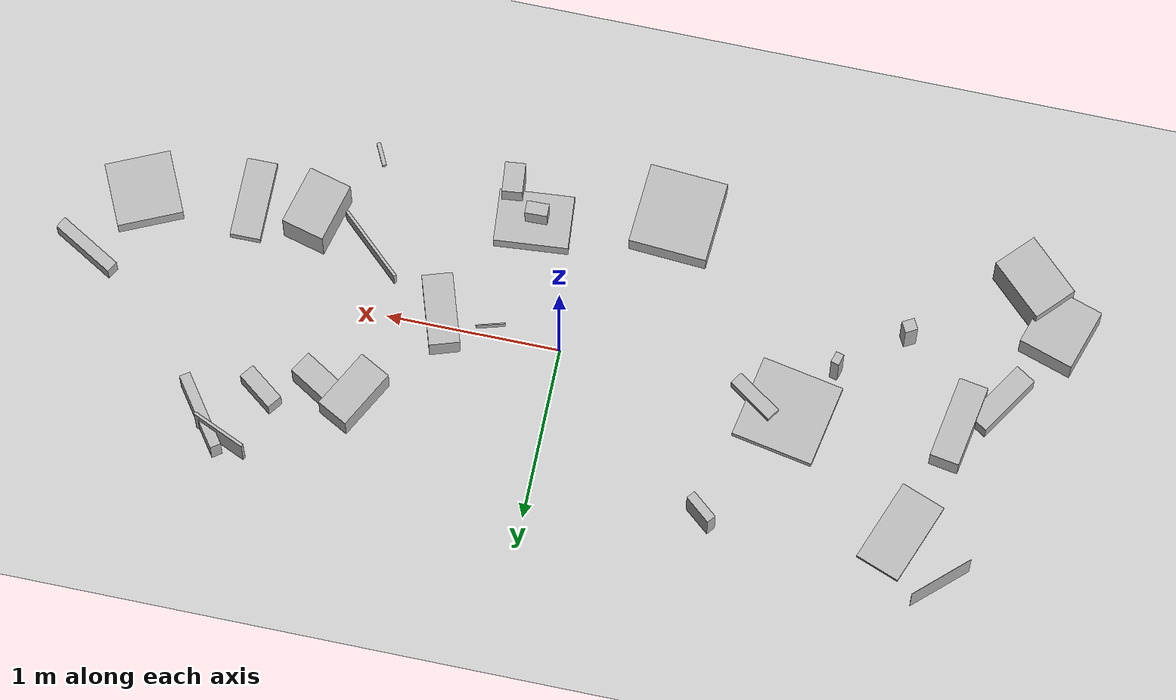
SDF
<?xml version="1.0" encoding="utf-8"?>
<sdf version="1.4">
   <world name="random_terrain">
      <model name="block_field">
         <static>true</static>
         <pose>0 0 0 0 0 0</pose>
         <link name="link">
            <visual name="visual_0">
               <pose>1.8883 0.81158 0.094854 0 0 -2.5287</pose>
               <geometry>
                  <box>
                     <size>0.063493 0.45669 0.18971</size>
                  </box>
               </geometry>
            </visual>
            <collision name="collision_0">
               <pose>1.8883 0.81158 0.094854 0 0 -2.5287</pose>
               <geometry>
                  <box>
                     <size>0.063493 0.45669 0.18971</size>
                  </box>
               </geometry>
            </collision>
            <visual name="visual_1">
               <pose>-1.329 0.093763 0.023642 0 0 2.9568</pose>
               <geometry>
                  <box>
                     <size>0.47875 0.48244 0.047284</size>
                  </box>
               </geometry>
            </visual>
            <collision name="collision_1">
               <pose>-1.329 0.093763 0.023642 0 0 2.9568</pose>
               <geometry>
                  <box>
                     <size>0.47875 0.48244 0.047284</size>
                  </box>
               </geometry>
            </collision>
            <visual name="visual_2">
               <pose>2.743 -0.029249 0.063264 0 0 2.6121</pose>
               <geometry>
                  <box>
                     <size>0.40014 0.070943 0.12653</size>
                  </box>
               </geometry>
            </visual>
            <collision name="collision_2">
               <pose>2.743 -0.029249 0.063264 0 0 2.6121</pose>
               <geometry>
                  <box>
                     <size>0.40014 0.070943 0.12653</size>
                  </box>
               </geometry>
            </collision>
            <visual name="visual_3">
               <pose>1.7532 0.91898 0.12737 0 0 2.7269</pose>
               <geometry>
                  <box>
                     <size>0.32787 0.017856 0.25474</size>
                  </box>
               </geometry>
            </visual>
            <collision name="collision_3">
               <pose>1.7532 0.91898 0.12737 0 0 2.7269</pose>
               <geometry>
                  <box>
                     <size>0.32787 0.017856 0.25474</size>
                  </box>
               </geometry>
            </collision>
            <visual name="visual_4">
               <pose>1.0724 0.51548 0.098322 0 0 -2.066</pose>
               <geometry>
                  <box>
                     <size>0.37157 0.19611 0.19664</size>
                  </box>
               </geometry>
            </visual>
            <collision name="collision_4">
               <pose>1.0724 0.51548 0.098322 0 0 -2.066</pose>
               <geometry>
                  <box>
                     <size>0.37157 0.19611 0.19664</size>
                  </box>
               </geometry>
            </collision>
            <visual name="visual_5">
               <pose>1.2363 -0.93633 0.01457 0 0 2.0323</pose>
               <geometry>
                  <box>
                     <size>0.13846 0.023086 0.02914</size>
                  </box>
               </geometry>
            </visual>
            <collision name="collision_5">
               <pose>1.2363 -0.93633 0.01457 0 0 2.0323</pose>
               <geometry>
                  <box>
                     <size>0.13846 0.023086 0.02914</size>
                  </box>
               </geometry>
            </collision>
            <visual name="visual_6">
               <pose>1.169 -0.3658 0.065812 0 0 -0.74419</pose>
               <geometry>
                  <box>
                     <size>0.47511 0.017223 0.13162</size>
                  </box>
               </geometry>
            </visual>
            <collision name="collision_6">
               <pose>1.169 -0.3658 0.065812 0 0 -0.74419</pose>
               <geometry>
                  <box>
                     <size>0.47511 0.017223 0.13162</size>
                  </box>
               </geometry>
            </collision>
            <visual name="visual_7">
               <pose>1.5931 0.5904 0.066838 0 0 0.91931</pose>
               <geometry>
                  <box>
                     <size>0.093436 0.24488 0.13368</size>
                  </box>
               </geometry>
            </visual>
            <collision name="collision_7">
               <pose>1.5931 0.5904 0.066838 0 0 0.91931</pose>
               <geometry>
                  <box>
                     <size>0.093436 0.24488 0.13368</size>
                  </box>
               </geometry>
            </collision>
            <visual name="visual_8">
               <pose>1.2562 0.50937 0.098265 0 0 -2.1199</pose>
               <geometry>
                  <box>
                     <size>0.13801 0.33985 0.19653</size>
                  </box>
               </geometry>
            </visual>
            <collision name="collision_8">
               <pose>1.2562 0.50937 0.098265 0 0 -2.1199</pose>
               <geometry>
                  <box>
                     <size>0.13801 0.33985 0.19653</size>
                  </box>
               </geometry>
            </collision>
            <visual name="visual_9">
               <pose>-2.286 -0.0032719 0.08779 0 0 -1.7353</pose>
               <geometry>
                  <box>
                     <size>0.47987 0.17019 0.17558</size>
                  </box>
               </geometry>
            </visual>
            <collision name="collision_9">
               <pose>-2.286 -0.0032719 0.08779 0 0 -1.7353</pose>
               <geometry>
                  <box>
                     <size>0.47987 0.17019 0.17558</size>
                  </box>
               </geometry>
            </collision>
            <visual name="visual_10">
               <pose>1.5076 -0.48981 0.13364 0 0 2.8858</pose>
               <geometry>
                  <box>
                     <size>0.25298 0.34954 0.26727</size>
                  </box>
               </geometry>
            </visual>
            <collision name="collision_10">
               <pose>1.5076 -0.48981 0.13364 0 0 2.8858</pose>
               <geometry>
                  <box>
                     <size>0.25298 0.34954 0.26727</size>
                  </box>
               </geometry>
            </collision>
            <visual name="visual_11">
               <pose>0.28329 -0.72275 0.12611 0 0 -1.5439</pose>
               <geometry>
                  <box>
                     <size>0.074647 0.12875 0.25222</size>
                  </box>
               </geometry>
            </visual>
            <collision name="collision_11">
               <pose>0.28329 -0.72275 0.12611 0 0 -1.5439</pose>
               <geometry>
                  <box>
                     <size>0.074647 0.12875 0.25222</size>
                  </box>
               </geometry>
            </collision>
            <visual name="visual_12">
               <pose>1.8857 -0.51295 0.029489 0 0 -1.564</pose>
               <geometry>
                  <box>
                     <size>0.46463 0.17499 0.058979</size>
                  </box>
               </geometry>
            </visual>
            <collision name="collision_12">
               <pose>1.8857 -0.51295 0.029489 0 0 -1.564</pose>
               <geometry>
                  <box>
                     <size>0.46463 0.17499 0.058979</size>
                  </box>
               </geometry>
            </collision>
            <visual name="visual_13">
               <pose>0.69627 -0.053422 0.08779 0 0 0.31242</pose>
               <geometry>
                  <box>
                     <size>0.17583 0.41541 0.17558</size>
                  </box>
               </geometry>
            </visual>
            <collision name="collision_13">
               <pose>0.69627 -0.053422 0.08779 0 0 0.31242</pose>
               <geometry>
                  <box>
                     <size>0.17583 0.41541 0.17558</size>
                  </box>
               </geometry>
            </collision>
            <visual name="visual_14">
               <pose>2.5032 -0.42832 0.057067 0 0 0.42614</pose>
               <geometry>
                  <box>
                     <size>0.3786 0.37686 0.11413</size>
                  </box>
               </geometry>
            </visual>
            <collision name="collision_14">
               <pose>2.5032 -0.42832 0.057067 0 0 0.42614</pose>
               <geometry>
                  <box>
                     <size>0.3786 0.37686 0.11413</size>
                  </box>
               </geometry>
            </collision>
            <visual name="visual_15">
               <pose>-2.5449 -0.8921 0.1401 0 0 -2.3254</pose>
               <geometry>
                  <box>
                     <size>0.2654 0.38958 0.2802</size>
                  </box>
               </geometry>
            </visual>
            <collision name="collision_15">
               <pose>-2.5449 -0.8921 0.1401 0 0 -2.3254</pose>
               <geometry>
                  <box>
                     <size>0.2654 0.38958 0.2802</size>
                  </box>
               </geometry>
            </collision>
            <visual name="visual_16">
               <pose>0.41294 -0.061219 0.024327 0 0 1.849</pose>
               <geometry>
                  <box>
                     <size>0.005951 0.16856 0.048655</size>
                  </box>
               </geometry>
            </visual>
            <collision name="collision_16">
               <pose>0.41294 -0.061219 0.024327 0 0 1.849</pose>
               <geometry>
                  <box>
                     <size>0.005951 0.16856 0.048655</size>
                  </box>
               </geometry>
            </collision>
            <visual name="visual_17">
               <pose>-1.1327 0.057066 0.039446 0 0 0.96811</pose>
               <geometry>
                  <box>
                     <size>0.082824 0.30099 0.078891</size>
                  </box>
               </geometry>
            </visual>
            <collision name="collision_17">
               <pose>-1.1327 0.057066 0.039446 0 0 0.96811</pose>
               <geometry>
                  <box>
                     <size>0.082824 0.30099 0.078891</size>
                  </box>
               </geometry>
            </collision>
            <visual name="visual_18">
               <pose>1.1353 0.4963 0.034347 0 0 2.5971</pose>
               <geometry>
                  <box>
                     <size>0.22527 0.041911 0.068693</size>
                  </box>
               </geometry>
            </visual>
            <collision name="collision_18">
               <pose>1.1353 0.4963 0.034347 0 0 2.5971</pose>
               <geometry>
                  <box>
                     <size>0.22527 0.041911 0.068693</size>
                  </box>
               </geometry>
            </collision>
            <visual name="visual_19">
               <pose>-2.0857 0.65163 0.011726 0 0 -0.36016</pose>
               <geometry>
                  <box>
                     <size>0.26917 0.49807 0.023453</size>
                  </box>
               </geometry>
            </visual>
            <collision name="collision_19">
               <pose>-2.0857 0.65163 0.011726 0 0 -0.36016</pose>
               <geometry>
                  <box>
                     <size>0.26917 0.49807 0.023453</size>
                  </box>
               </geometry>
            </collision>
            <visual name="visual_20">
               <pose>-2.3601 0.9238 0.1226 0 0 2.3166</pose>
               <geometry>
                  <box>
                     <size>0.0023171 0.38746 0.24519</size>
                  </box>
               </geometry>
            </visual>
            <collision name="collision_20">
               <pose>-2.3601 0.9238 0.1226 0 0 2.3166</pose>
               <geometry>
                  <box>
                     <size>0.0023171 0.38746 0.24519</size>
                  </box>
               </geometry>
            </collision>
            <visual name="visual_21">
               <pose>-2.4934 -0.20043 0.064712 0 0 2.5802</pose>
               <geometry>
                  <box>
                     <size>0.12994 0.40003 0.12942</size>
                  </box>
               </geometry>
            </visual>
            <collision name="collision_21">
               <pose>-2.4934 -0.20043 0.064712 0 0 2.5802</pose>
               <geometry>
                  <box>
                     <size>0.12994 0.40003 0.12942</size>
                  </box>
               </geometry>
            </collision>
            <visual name="visual_22">
               <pose>-1.9089 -0.47239 0.13039 0 0 0.5008</pose>
               <geometry>
                  <box>
                     <size>0.072769 0.068034 0.26079</size>
                  </box>
               </geometry>
            </visual>
            <collision name="collision_22">
               <pose>-1.9089 -0.47239 0.13039 0 0 0.5008</pose>
               <geometry>
                  <box>
                     <size>0.072769 0.068034 0.26079</size>
                  </box>
               </geometry>
            </collision>
            <visual name="visual_23">
               <pose>0.29916 -0.71009 0.052643 0 0 0.083249</pose>
               <geometry>
                  <box>
                     <size>0.42652 0.31103 0.10529</size>
                  </box>
               </geometry>
            </visual>
            <collision name="collision_23">
               <pose>0.29916 -0.71009 0.052643 0 0 0.083249</pose>
               <geometry>
                  <box>
                     <size>0.42652 0.31103 0.10529</size>
                  </box>
               </geometry>
            </collision>
            <visual name="visual_24">
               <pose>-0.58915 -0.84807 0.027586 0 0 -1.6339</pose>
               <geometry>
                  <box>
                     <size>0.11996 0.061659 0.055172</size>
                  </box>
               </geometry>
            </visual>
            <collision name="collision_24">
               <pose>-0.58915 -0.84807 0.027586 0 0 -1.6339</pose>
               <geometry>
                  <box>
                     <size>0.11996 0.061659 0.055172</size>
                  </box>
               </geometry>
            </collision>
            <visual name="visual_25">
               <pose>-0.4964 -0.90069 0.07363 0 0 -0.067528</pose>
               <geometry>
                  <box>
                     <size>0.45136 0.47239 0.14726</size>
                  </box>
               </geometry>
            </visual>
            <collision name="collision_25">
               <pose>-0.4964 -0.90069 0.07363 0 0 -0.067528</pose>
               <geometry>
                  <box>
                     <size>0.45136 0.47239 0.14726</size>
                  </box>
               </geometry>
            </collision>
            <visual name="visual_26">
               <pose>-0.97368 0.80011 0.11704 0 0 -0.69279</pose>
               <geometry>
                  <box>
                     <size>0.18462 0.055601 0.23408</size>
                  </box>
               </geometry>
            </visual>
            <collision name="collision_26">
               <pose>-0.97368 0.80011 0.11704 0 0 -0.69279</pose>
               <geometry>
                  <box>
                     <size>0.18462 0.055601 0.23408</size>
                  </box>
               </geometry>
            </collision>
            <visual name="visual_27">
               <pose>-1.5499 -0.19218 0.14131 0 0 2.866</pose>
               <geometry>
                  <box>
                     <size>0.048227 0.065987 0.28262</size>
                  </box>
               </geometry>
            </visual>
            <collision name="collision_27">
               <pose>-1.5499 -0.19218 0.14131 0 0 2.866</pose>
               <geometry>
                  <box>
                     <size>0.048227 0.065987 0.28262</size>
                  </box>
               </geometry>
            </collision>
            <visual name="visual_28">
               <pose>0.45125 -0.88044 0.12318 0 0 -3.0448</pose>
               <geometry>
                  <box>
                     <size>0.11739 0.17658 0.24636</size>
                  </box>
               </geometry>
            </visual>
            <collision name="collision_28">
               <pose>0.45125 -0.88044 0.12318 0 0 -3.0448</pose>
               <geometry>
                  <box>
                     <size>0.11739 0.17658 0.24636</size>
                  </box>
               </geometry>
            </collision>
            <visual name="visual_29">
               <pose>-2.7419 -0.66202 0.097162 0 0 -0.30836</pose>
               <geometry>
                  <box>
                     <size>0.32456 0.36586 0.19432</size>
                  </box>
               </geometry>
            </visual>
            <collision name="collision_29">
               <pose>-2.7419 -0.66202 0.097162 0 0 -0.30836</pose>
               <geometry>
                  <box>
                     <size>0.32456 0.36586 0.19432</size>
                  </box>
               </geometry>
            </collision>
         </link>
      </model><!--A global light source-->
      <include>
         <uri>model://sun</uri>
      </include><!--A ground plane-->
      <include>
         <uri>model://ground_plane</uri>
         <pose>0 0 0 0 0 0</pose>
      </include>
   </world>
</sdf>
